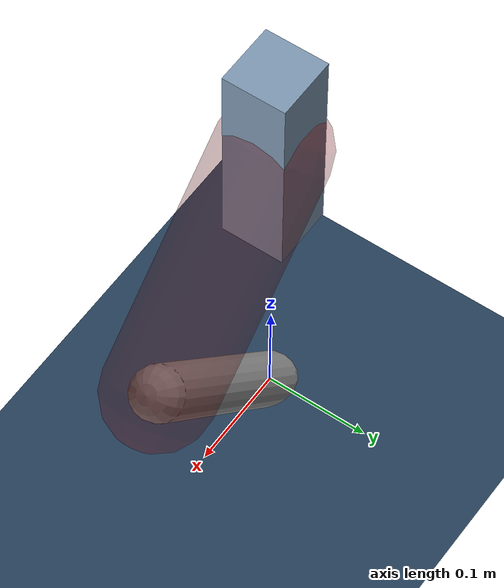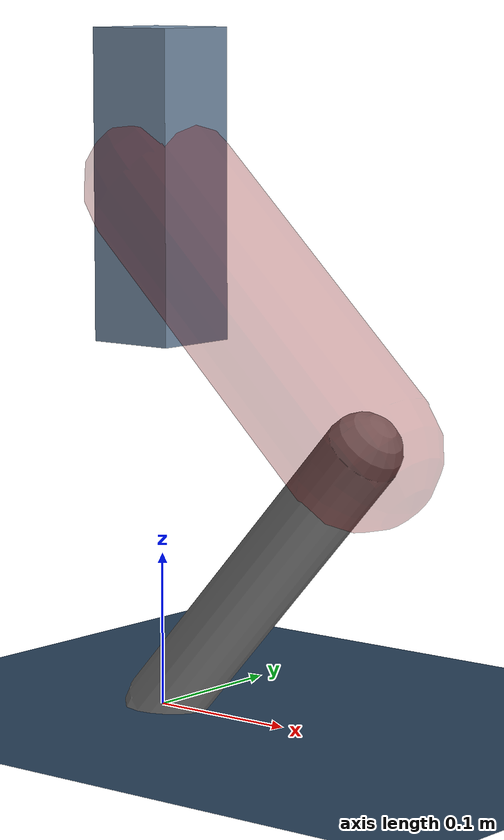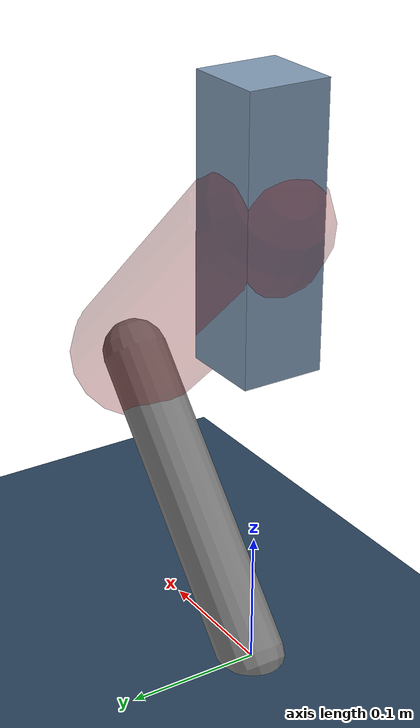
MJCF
<mujoco model="Hopper2D">
	<compiler inertiafromgeom="true" angle="radian" />
	<option timestep="0.001" integrator="implicit" cone="elliptic" solver="Newton" tolerance="1e-10" />

	<default>
		<geom contype="1" conaffinity="1" condim="3" friction="2 0.005 0.0001" solref="0.005 1" />
		<joint limited="true" damping="0.1" />
	</default>

	<asset>
		<texture name="skybox" type="skybox" builtin="gradient" rgb1=".4 .6 .8" rgb2="0 0 0" width="800" height="800" />
		<texture name="grid" type="2d" builtin="checker" rgb1=".1 .2 .3" rgb2=".2 .3 .4" width="300" height="300" mark="edge" markrgb=".2 .3 .4" />
		<material name="ground" texture="grid" texrepeat="1 1" texuniform="true" reflectance="0.1" />
		<material name="leg" rgba="0.5 0.6 0.7 1" />
	</asset>

	<worldbody>

		<geom name="floor" type="plane" size="5 5 0.25" material="ground" />

		<light directional="false" diffuse="0.8 0.8 0.8" specular="0.3 0.3 0.3" pos="0 0 2" dir="0 0 -1" />
		<light mode="targetbodycom" target="base" directional="false" diffuse="0.8 0.8 0.8" specular="0.3 0.3 0.3" pos="0 0 2" dir="0 0 -1" />

		<camera name="fixed" pos="0 -2 1" xyaxes="1 0 0 0 0 1" />
		<camera name="tracking" mode="trackcom" pos="0 -3 1" />

		<body name="root" pos="0 0 0.33923502394074034">
			<joint name="slide_x" type="slide" axis="1 0 0" range="-100 100" />
			<joint name="slide_z" type="slide" axis="0 0 1" range="0 10" />

			<body name="base" pos="0 0 0">
				<geom name="torso" type="box" size="0.03 0.03 0.1" mass="3.393" material="leg" />

				<body name="link1" pos="0 0 0" euler="0 0.7604581170907551 0">
					<joint type="hinge" axis="0 -1 0" pos="0 0 0" name="hinge1" limited="true" range="-3.14 3.14" stiffness="0" damping="0.1" />
					<geom name="thigh" type="capsule" fromto="0 0 0 0.2261447077515639 0 0" size="0.05" rgba="0.5 0 0 0.3" mass="0.7952617693789098" />

					<body name="link2" pos="0.2261447077515639 0 0" euler="0 1.5395829605184483 0">
						<joint type="hinge" axis="0 -1 0" pos="0 0 0" name="hinge2" limited="true" range="-3.14 3.14" stiffness="0" damping="0.1" />
						<geom name="shank" type="capsule" fromto="0 0 0 0.245902449300546 0 0" size="0.025" mass="0.4391219594404368" />

					</body>
				</body>
			</body>
		</body>
	</worldbody>

	<actuator>
		<motor name="torque1" joint="hinge1" ctrlrange="-44.22281353250493 44.22281353250493" ctrllimited="true" gear="1" />
		<motor name="torque2" joint="hinge2" ctrlrange="-157.51760454546795 157.51760454546795" ctrllimited="true" gear="1" />
	</actuator>
</mujoco>
